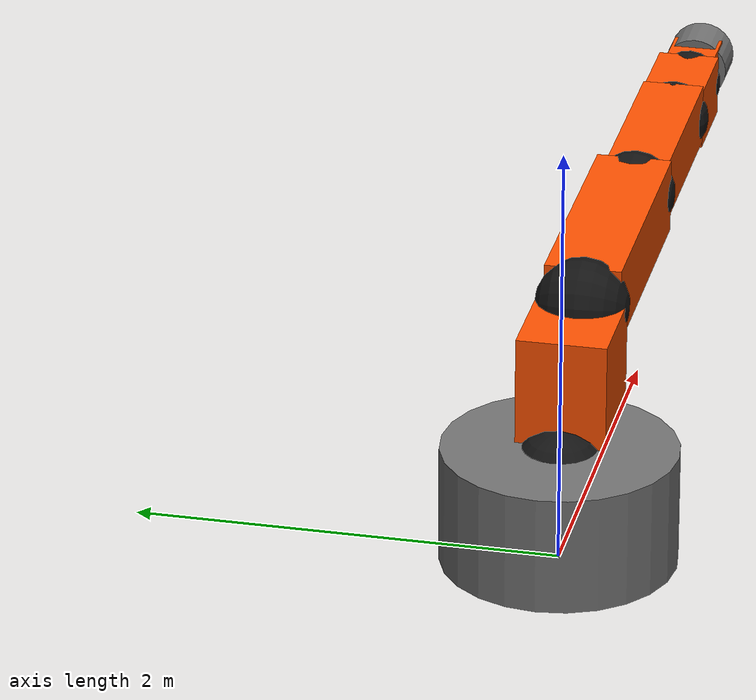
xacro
<?xml version="1.0"?>
<robot name="kuka_kr240_r3330" xmlns:xacro="http://wiki.ros.org/xacro">
  <xacro:include filename="$(find kuka_kr240_support)/urdf/kr240_r3330_macro.xacro"/>

  <xacro:arg name="prefix" default=""/>
  <xacro:arg name="x" default="0"/>
  <xacro:arg name="y" default="0"/>
  <xacro:arg name="z" default="0"/>
  <xacro:arg name="roll" default="0"/>
  <xacro:arg name="pitch" default="0"/>
  <xacro:arg name="yaw" default="0"/>
  <xacro:arg name="use_primitive_visuals" default="true"/>
  <xacro:arg name="use_collision_mesh_visuals" default="false"/>

  <link name="world"/>
  <xacro:kuka_kr240_r3330 prefix="$(arg prefix)"
                          use_primitive_visuals="$(arg use_primitive_visuals)"
                          use_collision_mesh_visuals="$(arg use_collision_mesh_visuals)"/>

  <joint name="$(arg prefix)world-base_link" type="fixed">
    <parent link="world"/>
    <child link="$(arg prefix)base_link"/>
    <origin xyz="$(arg x) $(arg y) $(arg z)" rpy="$(arg roll) $(arg pitch) $(arg yaw)"/>
  </joint>
</robot>

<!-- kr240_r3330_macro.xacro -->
<robot xmlns:xacro="http://wiki.ros.org/xacro">
  <xacro:macro name="kuka_kr240_r3330" params="prefix use_primitive_visuals:=true use_collision_mesh_visuals:=false">
    <material name="kuka_orange">
      <color rgba="1.0 0.32 0.0 1.0"/>
    </material>
    <material name="kuka_dark">
      <color rgba="0.08 0.08 0.08 1.0"/>
    </material>
    <material name="kuka_gray">
      <color rgba="0.45 0.45 0.45 1.0"/>
    </material>

    <link name="${prefix}base"/>
    <link name="${prefix}base_link">
      <collision>
        <origin xyz="0.0 0.0 0.0" rpy="0.0 0.0 0.0"/>
        <geometry>
          <mesh filename="package://kuka_kr240_support/meshes/kr240_r3330/collision/base_link.stl"/>
        </geometry>
      </collision>
      <xacro:if value="${use_primitive_visuals}">
        <visual>
          <origin xyz="0.0 0.0 0.28" rpy="0.0 0.0 0.0"/>
          <geometry>
            <cylinder radius="0.55" length="0.56"/>
          </geometry>
          <material name="kuka_gray"/>
        </visual>
      </xacro:if>
      <xacro:if value="${not use_primitive_visuals and use_collision_mesh_visuals}">
        <visual>
          <origin xyz="0.0 0.0 0.0" rpy="0.0 0.0 0.0"/>
          <geometry>
            <mesh filename="package://kuka_kr240_support/meshes/kr240_r3330/collision/base_link.stl"/>
          </geometry>
          <material name="kuka_gray"/>
        </visual>
      </xacro:if>
      <xacro:if value="${not use_primitive_visuals and not use_collision_mesh_visuals}">
        <visual>
          <origin xyz="0.0 0.0 0.0" rpy="0.0 0.0 0.0"/>
          <geometry>
            <mesh filename="package://kuka_kr240_support/meshes/kr240_r3330/visual/base_link.dae" scale="0.001 0.001 0.001"/>
          </geometry>
        </visual>
      </xacro:if>
    </link>
    <link name="${prefix}link_1">
      <collision>
        <origin xyz="0.0 -4.898587196589413e-17 0.4" rpy="-3.141592653589793 0.0 0.0"/>
        <geometry>
          <mesh filename="package://kuka_kr240_support/meshes/kr240_r3330/collision/link_1.stl"/>
        </geometry>
      </collision>
      <xacro:if value="${use_primitive_visuals}">
        <visual>
          <origin xyz="0.25 0.0 -0.3225" rpy="0.0 0.0 0.0"/>
          <geometry>
            <box size="0.50 0.42 0.70"/>
          </geometry>
          <material name="kuka_orange"/>
        </visual>
        <visual>
          <origin xyz="0.0 0.0 0.0" rpy="0.0 0.0 0.0"/>
          <geometry>
            <sphere radius="0.24"/>
          </geometry>
          <material name="kuka_dark"/>
        </visual>
      </xacro:if>
      <xacro:if value="${not use_primitive_visuals and use_collision_mesh_visuals}">
        <visual>
          <origin xyz="0.0 -4.898587196589413e-17 0.4" rpy="-3.141592653589793 0.0 0.0"/>
          <geometry>
            <mesh filename="package://kuka_kr240_support/meshes/kr240_r3330/collision/link_1.stl"/>
          </geometry>
          <material name="kuka_orange"/>
        </visual>
      </xacro:if>
      <xacro:if value="${not use_primitive_visuals and not use_collision_mesh_visuals}">
        <visual>
          <origin xyz="0.0 -4.898587196589413e-17 0.4" rpy="-3.141592653589793 0.0 0.0"/>
          <geometry>
            <mesh filename="package://kuka_kr240_support/meshes/kr240_r3330/visual/link_1.dae" scale="0.001 0.001 0.001"/>
          </geometry>
        </visual>
      </xacro:if>
    </link>
    <link name="${prefix}link_2">
      <collision>
        <origin xyz="-1.045 -0.49999999999999994 1.1297366722134329e-16" rpy="1.5707963267948968 0.0 1.5707963267948966"/>
        <geometry>
          <mesh filename="package://kuka_kr240_support/meshes/kr240_r3330/collision/link_2.stl"/>
        </geometry>
      </collision>
      <xacro:if value="${use_primitive_visuals}">
        <visual>
          <origin xyz="0.65 0.0 0.0" rpy="0.0 0.0 0.0"/>
          <geometry>
            <box size="1.30 0.36 0.36"/>
          </geometry>
          <material name="kuka_orange"/>
        </visual>
        <visual>
          <origin xyz="0.0 0.0 0.0" rpy="0.0 0.0 0.0"/>
          <geometry>
            <sphere radius="0.22"/>
          </geometry>
          <material name="kuka_dark"/>
        </visual>
      </xacro:if>
      <xacro:if value="${not use_primitive_visuals and use_collision_mesh_visuals}">
        <visual>
          <origin xyz="-1.045 -0.49999999999999994 1.1297366722134329e-16" rpy="1.5707963267948968 0.0 1.5707963267948966"/>
          <geometry>
            <mesh filename="package://kuka_kr240_support/meshes/kr240_r3330/collision/link_2.stl"/>
          </geometry>
          <material name="kuka_orange"/>
        </visual>
      </xacro:if>
      <xacro:if value="${not use_primitive_visuals and not use_collision_mesh_visuals}">
        <visual>
          <origin xyz="-1.045 -0.49999999999999994 1.1297366722134329e-16" rpy="1.5707963267948968 0.0 1.5707963267948966"/>
          <geometry>
            <mesh filename="package://kuka_kr240_support/meshes/kr240_r3330/visual/link_2.dae" scale="0.001 0.001 0.001"/>
          </geometry>
        </visual>
      </xacro:if>
    </link>
    <link name="${prefix}link_3">
      <collision>
        <origin xyz="-0.5000000000000001 2.345 1.1297366722134334e-16" rpy="1.5707963267948968 0.0 0.0"/>
        <geometry>
          <mesh filename="package://kuka_kr240_support/meshes/kr240_r3330/collision/link_3.stl"/>
        </geometry>
      </collision>
      <xacro:if value="${use_primitive_visuals}">
        <visual>
          <origin xyz="0.532 0.0275 0.0" rpy="0.0 0.0 0.0"/>
          <geometry>
            <box size="1.08 0.30 0.30"/>
          </geometry>
          <material name="kuka_orange"/>
        </visual>
        <visual>
          <origin xyz="0.0 0.0 0.0" rpy="0.0 0.0 0.0"/>
          <geometry>
            <sphere radius="0.20"/>
          </geometry>
          <material name="kuka_dark"/>
        </visual>
      </xacro:if>
      <xacro:if value="${not use_primitive_visuals and use_collision_mesh_visuals}">
        <visual>
          <origin xyz="-0.5000000000000001 2.345 1.1297366722134334e-16" rpy="1.5707963267948968 0.0 0.0"/>
          <geometry>
            <mesh filename="package://kuka_kr240_support/meshes/kr240_r3330/collision/link_3.stl"/>
          </geometry>
          <material name="kuka_orange"/>
        </visual>
      </xacro:if>
      <xacro:if value="${not use_primitive_visuals and not use_collision_mesh_visuals}">
        <visual>
          <origin xyz="-0.5000000000000001 2.345 1.1297366722134334e-16" rpy="1.5707963267948968 0.0 0.0"/>
          <geometry>
            <mesh filename="package://kuka_kr240_support/meshes/kr240_r3330/visual/link_3.dae" scale="0.001 0.001 0.001"/>
          </geometry>
        </visual>
      </xacro:if>
    </link>
    <link name="${prefix}link_4">
      <collision>
        <origin xyz="-2.29 1.7206287528020274e-17 1.5639999999999998" rpy="1.8369701987210297e-16 1.5707963267948966 0.0"/>
        <geometry>
          <mesh filename="package://kuka_kr240_support/meshes/kr240_r3330/collision/link_4.stl"/>
        </geometry>
      </collision>
      <xacro:if value="${use_primitive_visuals}">
        <visual>
          <origin xyz="0.0 0.0 -0.2305" rpy="0.0 0.0 0.0"/>
          <geometry>
            <box size="0.30 0.30 0.46"/>
          </geometry>
          <material name="kuka_orange"/>
        </visual>
        <visual>
          <origin xyz="0.0 0.0 0.0" rpy="0.0 0.0 0.0"/>
          <geometry>
            <sphere radius="0.18"/>
          </geometry>
          <material name="kuka_dark"/>
        </visual>
      </xacro:if>
      <xacro:if value="${not use_primitive_visuals and use_collision_mesh_visuals}">
        <visual>
          <origin xyz="-2.29 1.7206287528020274e-17 1.5639999999999998" rpy="1.8369701987210297e-16 1.5707963267948966 0.0"/>
          <geometry>
            <mesh filename="package://kuka_kr240_support/meshes/kr240_r3330/collision/link_4.stl"/>
          </geometry>
          <material name="kuka_orange"/>
        </visual>
      </xacro:if>
      <xacro:if value="${not use_primitive_visuals and not use_collision_mesh_visuals}">
        <visual>
          <origin xyz="-2.29 1.7206287528020274e-17 1.5639999999999998" rpy="1.8369701987210297e-16 1.5707963267948966 0.0"/>
          <geometry>
            <mesh filename="package://kuka_kr240_support/meshes/kr240_r3330/visual/link_4.dae" scale="0.001 0.001 0.001"/>
          </geometry>
        </visual>
      </xacro:if>
    </link>
    <link name="${prefix}link_5">
      <collision>
        <origin xyz="-2.0250000000000004 2.29 9.79717439317831e-19" rpy="1.5707963267948968 0.0 -6.123233995736766e-17"/>
        <geometry>
          <mesh filename="package://kuka_kr240_support/meshes/kr240_r3330/collision/link_5.stl"/>
        </geometry>
      </collision>
      <xacro:if value="${use_primitive_visuals}">
        <visual>
          <origin xyz="0.145 0.0 0.0" rpy="0.0 0.0 0.0"/>
          <geometry>
            <box size="0.29 0.24 0.24"/>
          </geometry>
          <material name="kuka_orange"/>
        </visual>
        <visual>
          <origin xyz="0.0 0.0 0.0" rpy="0.0 0.0 0.0"/>
          <geometry>
            <sphere radius="0.16"/>
          </geometry>
          <material name="kuka_dark"/>
        </visual>
      </xacro:if>
      <xacro:if value="${not use_primitive_visuals and use_collision_mesh_visuals}">
        <visual>
          <origin xyz="-2.0250000000000004 2.29 9.79717439317831e-19" rpy="1.5707963267948968 0.0 -6.123233995736766e-17"/>
          <geometry>
            <mesh filename="package://kuka_kr240_support/meshes/kr240_r3330/collision/link_5.stl"/>
          </geometry>
          <material name="kuka_orange"/>
        </visual>
      </xacro:if>
      <xacro:if value="${not use_primitive_visuals and not use_collision_mesh_visuals}">
        <visual>
          <origin xyz="-2.0250000000000004 2.29 9.79717439317831e-19" rpy="1.5707963267948968 0.0 -6.123233995736766e-17"/>
          <geometry>
            <mesh filename="package://kuka_kr240_support/meshes/kr240_r3330/visual/link_5.dae" scale="0.001 0.001 0.001"/>
          </geometry>
        </visual>
      </xacro:if>
    </link>
    <link name="${prefix}link_6">
      <collision>
        <origin xyz="-2.2900000000000005 -1.4077314956198825e-16 2.3149999999999995" rpy="1.2246467991473532e-16 1.5707963267948966 0.0"/>
        <geometry>
          <mesh filename="package://kuka_kr240_support/meshes/kr240_r3330/collision/link_6.stl"/>
        </geometry>
      </collision>
      <xacro:if value="${use_primitive_visuals}">
        <visual>
          <origin xyz="0.0 0.0 0.0" rpy="0.0 0.0 0.0"/>
          <geometry>
            <cylinder radius="0.16" length="0.24"/>
          </geometry>
          <material name="kuka_gray"/>
        </visual>
      </xacro:if>
      <xacro:if value="${not use_primitive_visuals and use_collision_mesh_visuals}">
        <visual>
          <origin xyz="-2.2900000000000005 -1.4077314956198825e-16 2.3149999999999995" rpy="1.2246467991473532e-16 1.5707963267948966 0.0"/>
          <geometry>
            <mesh filename="package://kuka_kr240_support/meshes/kr240_r3330/collision/link_6.stl"/>
          </geometry>
          <material name="kuka_gray"/>
        </visual>
      </xacro:if>
      <xacro:if value="${not use_primitive_visuals and not use_collision_mesh_visuals}">
        <visual>
          <origin xyz="-2.2900000000000005 -1.4077314956198825e-16 2.3149999999999995" rpy="1.2246467991473532e-16 1.5707963267948966 0.0"/>
          <geometry>
            <mesh filename="package://kuka_kr240_support/meshes/kr240_r3330/visual/link_6.dae" scale="0.001 0.001 0.001"/>
          </geometry>
        </visual>
      </xacro:if>
    </link>
    <link name="${prefix}flange"/>
    <link name="${prefix}tool0"/>

    <joint name="${prefix}base_link-base" type="fixed">
      <parent link="${prefix}base_link"/>
      <child link="${prefix}base"/>
    </joint>
    <joint name="${prefix}joint_1" type="revolute">
      <origin xyz="0.0 0.0 0.4" rpy="3.141592653589793 0.0 0.0"/>
      <parent link="${prefix}base_link"/>
      <child link="${prefix}link_1"/>
      <axis xyz="0.0 0.0 1.0"/>
      <limit effort="14400" lower="-3.2288591125" upper="3.2288591125" velocity="1.7456"/>
    </joint>
    <joint name="${prefix}joint_2" type="revolute">
      <origin xyz="0.5 0.0 -0.645" rpy="1.5707963267948966 0.0 0.0"/>
      <parent link="${prefix}link_1"/>
      <child link="${prefix}link_2"/>
      <axis xyz="0.0 0.0 1.0"/>
      <limit effort="14400" lower="-2.268928025" upper="0.34906585" velocity="1.5713"/>
    </joint>
    <joint name="${prefix}joint_3" type="revolute">
      <origin xyz="1.3 0.0 0.0" rpy="0.0 0.0 0.0"/>
      <parent link="${prefix}link_2"/>
      <child link="${prefix}link_3"/>
      <axis xyz="0.0 0.0 1.0"/>
      <limit effort="12815.8064" lower="-1.74532925" upper="2.51327412" velocity="1.5711"/>
    </joint>
    <joint name="${prefix}joint_4" type="revolute">
      <origin xyz="1.064 0.055 0.0" rpy="1.5707963267948966 0.0 -1.5707963267948966"/>
      <parent link="${prefix}link_3"/>
      <child link="${prefix}link_4"/>
      <axis xyz="0.0 0.0 1.0"/>
      <limit effort="4056.9749" lower="-6.108652375" upper="6.108652375" velocity="2.0947"/>
    </joint>
    <joint name="${prefix}joint_5" type="revolute">
      <origin xyz="0.0 0.0 -0.461" rpy="0.0 1.5707963267948966 1.5707963267948966"/>
      <parent link="${prefix}link_4"/>
      <child link="${prefix}link_5"/>
      <axis xyz="0.0 0.0 1.0"/>
      <limit effort="4056.9749" lower="-2.0943951" upper="2.0943951" velocity="2.0938"/>
    </joint>
    <joint name="${prefix}joint_6" type="revolute">
      <origin xyz="0.29 0.0 0.0" rpy="1.5707963267948966 0.0 -1.5707963267948966"/>
      <parent link="${prefix}link_5"/>
      <child link="${prefix}link_6"/>
      <axis xyz="0.0 0.0 1.0"/>
      <limit effort="2235.192" lower="-6.108652375" upper="6.108652375" velocity="2.7844"/>
    </joint>
    <joint name="${prefix}link6-flange" type="fixed">
      <origin xyz="0.0 0.0 0.0" rpy="0.0 1.5707963267948966 0.0"/>
      <parent link="${prefix}link_6"/>
      <child link="${prefix}flange"/>
    </joint>
    <joint name="${prefix}link6-tool0" type="fixed">
      <origin xyz="0.0 0.0 0.0" rpy="3.141592653589793 1.2246467991473532e-16 3.141592653589793"/>
      <parent link="${prefix}link_6"/>
      <child link="${prefix}tool0"/>
    </joint>
  </xacro:macro>
</robot>
